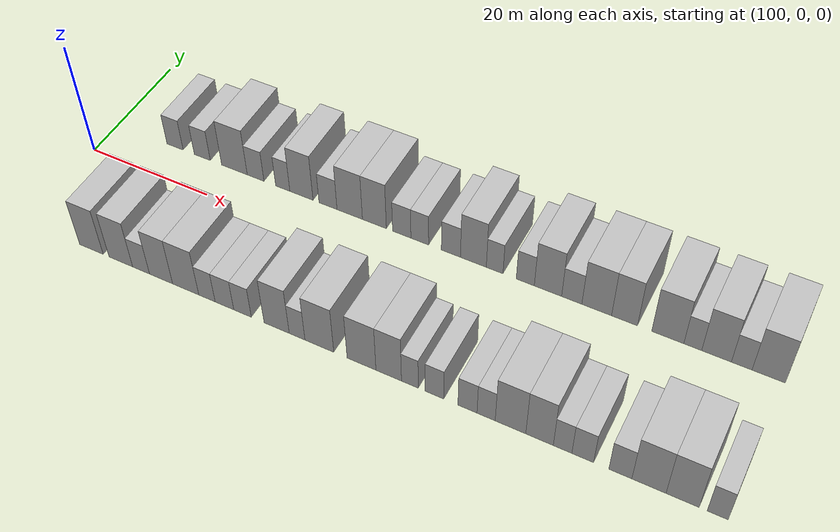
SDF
<sdf version="1.6">
 <world name="default">
  <model name="building_26">
   <static>1</static>
   <pose>110.3970 11.0000 0 0.000000 0.000000 1.570796</pose>
   <link name="link">
    <pose>0 0 3.00 0 0 0</pose>
    <collision name="collision"><geometry><box><size>10.0000 2.8928 6.0000</size></box></geometry></collision>
    <visual name="visual">
     <cast_shadows>0</cast_shadows>
     <geometry><box><size>10.0000 2.8928 6.0000</size></box></geometry>
     <material>
      <script>
       <uri>model://HANNAS_wall/materials/scripts</uri>
       <uri>model://HANNAS_wall/materials/textures</uri>
       <name>vrc/HANNAS_wall</name>
      </script>
     </material>
    </visual>
   </link>
  </model>
  <model name="building_27">
   <static>1</static>
   <pose>115.2579 11.0000 0 0.000000 0.000000 1.570796</pose>
   <link name="link">
    <pose>0 0 3.00 0 0 0</pose>
    <collision name="collision"><geometry><box><size>10.0000 2.8290 6.0000</size></box></geometry></collision>
    <visual name="visual">
     <cast_shadows>0</cast_shadows>
     <geometry><box><size>10.0000 2.8290 6.0000</size></box></geometry>
     <material>
      <script>
       <uri>model://HANNAS_wall/materials/scripts</uri>
       <uri>model://HANNAS_wall/materials/textures</uri>
       <name>vrc/HANNAS_wall</name>
      </script>
     </material>
    </visual>
   </link>
  </model>
  <model name="building_28">
   <static>1</static>
   <pose>120.9026 11.0000 0 0.000000 0.000000 1.570796</pose>
   <link name="link">
    <pose>0 0 4.50 0 0 0</pose>
    <collision name="collision"><geometry><box><size>10.0000 4.4603 9.0000</size></box></geometry></collision>
    <visual name="visual">
     <cast_shadows>0</cast_shadows>
     <geometry><box><size>10.0000 4.4603 9.0000</size></box></geometry>
     <material>
      <script>
       <uri>model://HANNAS_wall/materials/scripts</uri>
       <uri>model://HANNAS_wall/materials/textures</uri>
       <name>vrc/HANNAS_wall</name>
      </script>
     </material>
    </visual>
   </link>
  </model>
  <model name="building_29">
   <static>1</static>
   <pose>124.5694 11.0000 0 0.000000 0.000000 1.570796</pose>
   <link name="link">
    <pose>0 0 3.00 0 0 0</pose>
    <collision name="collision"><geometry><box><size>10.0000 2.8734 6.0000</size></box></geometry></collision>
    <visual name="visual">
     <cast_shadows>0</cast_shadows>
     <geometry><box><size>10.0000 2.8734 6.0000</size></box></geometry>
     <material>
      <script>
       <uri>model://HANNAS_wall/materials/scripts</uri>
       <uri>model://HANNAS_wall/materials/textures</uri>
       <name>vrc/HANNAS_wall</name>
      </script>
     </material>
    </visual>
   </link>
  </model>
  <model name="building_30">
   <static>1</static>
   <pose>129.2118 11.0000 0 0.000000 0.000000 1.570796</pose>
   <link name="link">
    <pose>0 0 3.00 0 0 0</pose>
    <collision name="collision"><geometry><box><size>10.0000 2.4114 6.0000</size></box></geometry></collision>
    <visual name="visual">
     <cast_shadows>0</cast_shadows>
     <geometry><box><size>10.0000 2.4114 6.0000</size></box></geometry>
     <material>
      <script>
       <uri>model://HANNAS_wall/materials/scripts</uri>
       <uri>model://HANNAS_wall/materials/textures</uri>
       <name>vrc/HANNAS_wall</name>
      </script>
     </material>
    </visual>
   </link>
  </model>
  <model name="building_31">
   <static>1</static>
   <pose>132.3618 11.0000 0 0.000000 0.000000 1.570796</pose>
   <link name="link">
    <pose>0 0 4.50 0 0 0</pose>
    <collision name="collision"><geometry><box><size>10.0000 3.8887 9.0000</size></box></geometry></collision>
    <visual name="visual">
     <cast_shadows>0</cast_shadows>
     <geometry><box><size>10.0000 3.8887 9.0000</size></box></geometry>
     <material>
      <script>
       <uri>model://HANNAS_wall/materials/scripts</uri>
       <uri>model://HANNAS_wall/materials/textures</uri>
       <name>vrc/HANNAS_wall</name>
      </script>
     </material>
    </visual>
   </link>
  </model>
  <model name="building_32">
   <static>1</static>
   <pose>136.7934 11.0000 0 0.000000 0.000000 1.570796</pose>
   <link name="link">
    <pose>0 0 3.00 0 0 0</pose>
    <collision name="collision"><geometry><box><size>10.0000 2.9744 6.0000</size></box></geometry></collision>
    <visual name="visual">
     <cast_shadows>0</cast_shadows>
     <geometry><box><size>10.0000 2.9744 6.0000</size></box></geometry>
     <material>
      <script>
       <uri>model://HANNAS_wall/materials/scripts</uri>
       <uri>model://HANNAS_wall/materials/textures</uri>
       <name>vrc/HANNAS_wall</name>
      </script>
     </material>
    </visual>
   </link>
  </model>
  <model name="building_33">
   <static>1</static>
   <pose>140.3611 11.0000 0 0.000000 0.000000 1.570796</pose>
   <link name="link">
    <pose>0 0 4.50 0 0 0</pose>
    <collision name="collision"><geometry><box><size>10.0000 4.1609 9.0000</size></box></geometry></collision>
    <visual name="visual">
     <cast_shadows>0</cast_shadows>
     <geometry><box><size>10.0000 4.1609 9.0000</size></box></geometry>
     <material>
      <script>
       <uri>model://HANNAS_wall/materials/scripts</uri>
       <uri>model://HANNAS_wall/materials/textures</uri>
       <name>vrc/HANNAS_wall</name>
      </script>
     </material>
    </visual>
   </link>
  </model>
  <model name="building_34">
   <static>1</static>
   <pose>144.3769 11.0000 0 0.000000 0.000000 1.570796</pose>
   <link name="link">
    <pose>0 0 4.50 0 0 0</pose>
    <collision name="collision"><geometry><box><size>10.0000 3.8707 9.0000</size></box></geometry></collision>
    <visual name="visual">
     <cast_shadows>0</cast_shadows>
     <geometry><box><size>10.0000 3.8707 9.0000</size></box></geometry>
     <material>
      <script>
       <uri>model://HANNAS_wall/materials/scripts</uri>
       <uri>model://HANNAS_wall/materials/textures</uri>
       <name>vrc/HANNAS_wall</name>
      </script>
     </material>
    </visual>
   </link>
  </model>
  <model name="building_35">
   <static>1</static>
   <pose>148.7696 11.0000 0 0.000000 0.000000 1.570796</pose>
   <link name="link">
    <pose>0 0 3.00 0 0 0</pose>
    <collision name="collision"><geometry><box><size>10.0000 2.9146 6.0000</size></box></geometry></collision>
    <visual name="visual">
     <cast_shadows>0</cast_shadows>
     <geometry><box><size>10.0000 2.9146 6.0000</size></box></geometry>
     <material>
      <script>
       <uri>model://HANNAS_wall/materials/scripts</uri>
       <uri>model://HANNAS_wall/materials/textures</uri>
       <name>vrc/HANNAS_wall</name>
      </script>
     </material>
    </visual>
   </link>
  </model>
  <model name="building_36">
   <static>1</static>
   <pose>151.6270 11.0000 0 0.000000 0.000000 1.570796</pose>
   <link name="link">
    <pose>0 0 3.00 0 0 0</pose>
    <collision name="collision"><geometry><box><size>10.0000 2.8002 6.0000</size></box></geometry></collision>
    <visual name="visual">
     <cast_shadows>0</cast_shadows>
     <geometry><box><size>10.0000 2.8002 6.0000</size></box></geometry>
     <material>
      <script>
       <uri>model://HANNAS_wall/materials/scripts</uri>
       <uri>model://HANNAS_wall/materials/textures</uri>
       <name>vrc/HANNAS_wall</name>
      </script>
     </material>
    </visual>
   </link>
  </model>
  <model name="building_37">
   <static>1</static>
   <pose>156.5075 11.0000 0 0.000000 0.000000 1.570796</pose>
   <link name="link">
    <pose>0 0 3.00 0 0 0</pose>
    <collision name="collision"><geometry><box><size>10.0000 2.9610 6.0000</size></box></geometry></collision>
    <visual name="visual">
     <cast_shadows>0</cast_shadows>
     <geometry><box><size>10.0000 2.9610 6.0000</size></box></geometry>
     <material>
      <script>
       <uri>model://HANNAS_wall/materials/scripts</uri>
       <uri>model://HANNAS_wall/materials/textures</uri>
       <name>vrc/HANNAS_wall</name>
      </script>
     </material>
    </visual>
   </link>
  </model>
  <model name="building_38">
   <static>1</static>
   <pose>159.9757 11.0000 0 0.000000 0.000000 1.570796</pose>
   <link name="link">
    <pose>0 0 4.50 0 0 0</pose>
    <collision name="collision"><geometry><box><size>10.0000 3.9754 9.0000</size></box></geometry></collision>
    <visual name="visual">
     <cast_shadows>0</cast_shadows>
     <geometry><box><size>10.0000 3.9754 9.0000</size></box></geometry>
     <material>
      <script>
       <uri>model://HANNAS_wall/materials/scripts</uri>
       <uri>model://HANNAS_wall/materials/textures</uri>
       <name>vrc/HANNAS_wall</name>
      </script>
     </material>
    </visual>
   </link>
  </model>
  <model name="building_39">
   <static>1</static>
   <pose>163.2324 11.0000 0 0.000000 0.000000 1.570796</pose>
   <link name="link">
    <pose>0 0 3.00 0 0 0</pose>
    <collision name="collision"><geometry><box><size>10.0000 2.5378 6.0000</size></box></geometry></collision>
    <visual name="visual">
     <cast_shadows>0</cast_shadows>
     <geometry><box><size>10.0000 2.5378 6.0000</size></box></geometry>
     <material>
      <script>
       <uri>model://HANNAS_wall/materials/scripts</uri>
       <uri>model://HANNAS_wall/materials/textures</uri>
       <name>vrc/HANNAS_wall</name>
      </script>
     </material>
    </visual>
   </link>
  </model>
  <model name="building_40">
   <static>1</static>
   <pose>167.8504 11.0000 0 0.000000 0.000000 1.570796</pose>
   <link name="link">
    <pose>0 0 3.00 0 0 0</pose>
    <collision name="collision"><geometry><box><size>10.0000 2.6983 6.0000</size></box></geometry></collision>
    <visual name="visual">
     <cast_shadows>0</cast_shadows>
     <geometry><box><size>10.0000 2.6983 6.0000</size></box></geometry>
     <material>
      <script>
       <uri>model://HANNAS_wall/materials/scripts</uri>
       <uri>model://HANNAS_wall/materials/textures</uri>
       <name>vrc/HANNAS_wall</name>
      </script>
     </material>
    </visual>
   </link>
  </model>
  <model name="building_41">
   <static>1</static>
   <pose>171.2241 11.0000 0 0.000000 0.000000 1.570796</pose>
   <link name="link">
    <pose>0 0 4.50 0 0 0</pose>
    <collision name="collision"><geometry><box><size>10.0000 4.0490 9.0000</size></box></geometry></collision>
    <visual name="visual">
     <cast_shadows>0</cast_shadows>
     <geometry><box><size>10.0000 4.0490 9.0000</size></box></geometry>
     <material>
      <script>
       <uri>model://HANNAS_wall/materials/scripts</uri>
       <uri>model://HANNAS_wall/materials/textures</uri>
       <name>vrc/HANNAS_wall</name>
      </script>
     </material>
    </visual>
   </link>
  </model>
  <model name="building_42">
   <static>1</static>
   <pose>174.7261 11.0000 0 0.000000 0.000000 1.570796</pose>
   <link name="link">
    <pose>0 0 3.00 0 0 0</pose>
    <collision name="collision"><geometry><box><size>10.0000 2.9550 6.0000</size></box></geometry></collision>
    <visual name="visual">
     <cast_shadows>0</cast_shadows>
     <geometry><box><size>10.0000 2.9550 6.0000</size></box></geometry>
     <material>
      <script>
       <uri>model://HANNAS_wall/materials/scripts</uri>
       <uri>model://HANNAS_wall/materials/textures</uri>
       <name>vrc/HANNAS_wall</name>
      </script>
     </material>
    </visual>
   </link>
  </model>
  <model name="building_43">
   <static>1</static>
   <pose>178.3514 11.0000 0 0.000000 0.000000 1.570796</pose>
   <link name="link">
    <pose>0 0 4.50 0 0 0</pose>
    <collision name="collision"><geometry><box><size>10.0000 4.2957 9.0000</size></box></geometry></collision>
    <visual name="visual">
     <cast_shadows>0</cast_shadows>
     <geometry><box><size>10.0000 4.2957 9.0000</size></box></geometry>
     <material>
      <script>
       <uri>model://HANNAS_wall/materials/scripts</uri>
       <uri>model://HANNAS_wall/materials/textures</uri>
       <name>vrc/HANNAS_wall</name>
      </script>
     </material>
    </visual>
   </link>
  </model>
  <model name="building_44">
   <static>1</static>
   <pose>182.3500 11.0000 0 0.000000 0.000000 1.570796</pose>
   <link name="link">
    <pose>0 0 4.50 0 0 0</pose>
    <collision name="collision"><geometry><box><size>10.0000 3.7013 9.0000</size></box></geometry></collision>
    <visual name="visual">
     <cast_shadows>0</cast_shadows>
     <geometry><box><size>10.0000 3.7013 9.0000</size></box></geometry>
     <material>
      <script>
       <uri>model://HANNAS_wall/materials/scripts</uri>
       <uri>model://HANNAS_wall/materials/textures</uri>
       <name>vrc/HANNAS_wall</name>
      </script>
     </material>
    </visual>
   </link>
  </model>
  <model name="building_45">
   <static>1</static>
   <pose>188.4434 11.0000 0 0.000000 0.000000 1.570796</pose>
   <link name="link">
    <pose>0 0 4.50 0 0 0</pose>
    <collision name="collision"><geometry><box><size>10.0000 4.4856 9.0000</size></box></geometry></collision>
    <visual name="visual">
     <cast_shadows>0</cast_shadows>
     <geometry><box><size>10.0000 4.4856 9.0000</size></box></geometry>
     <material>
      <script>
       <uri>model://HANNAS_wall/materials/scripts</uri>
       <uri>model://HANNAS_wall/materials/textures</uri>
       <name>vrc/HANNAS_wall</name>
      </script>
     </material>
    </visual>
   </link>
  </model>
  <model name="building_46">
   <static>1</static>
   <pose>191.9184 11.0000 0 0.000000 0.000000 1.570796</pose>
   <link name="link">
    <pose>0 0 3.00 0 0 0</pose>
    <collision name="collision"><geometry><box><size>10.0000 2.4643 6.0000</size></box></geometry></collision>
    <visual name="visual">
     <cast_shadows>0</cast_shadows>
     <geometry><box><size>10.0000 2.4643 6.0000</size></box></geometry>
     <material>
      <script>
       <uri>model://HANNAS_wall/materials/scripts</uri>
       <uri>model://HANNAS_wall/materials/textures</uri>
       <name>vrc/HANNAS_wall</name>
      </script>
     </material>
    </visual>
   </link>
  </model>
  <model name="building_47">
   <static>1</static>
   <pose>195.1739 11.0000 0 0.000000 0.000000 1.570796</pose>
   <link name="link">
    <pose>0 0 4.50 0 0 0</pose>
    <collision name="collision"><geometry><box><size>10.0000 4.0467 9.0000</size></box></geometry></collision>
    <visual name="visual">
     <cast_shadows>0</cast_shadows>
     <geometry><box><size>10.0000 4.0467 9.0000</size></box></geometry>
     <material>
      <script>
       <uri>model://HANNAS_wall/materials/scripts</uri>
       <uri>model://HANNAS_wall/materials/textures</uri>
       <name>vrc/HANNAS_wall</name>
      </script>
     </material>
    </visual>
   </link>
  </model>
  <model name="building_48">
   <static>1</static>
   <pose>198.5893 11.0000 0 0.000000 0.000000 1.570796</pose>
   <link name="link">
    <pose>0 0 3.00 0 0 0</pose>
    <collision name="collision"><geometry><box><size>10.0000 2.7841 6.0000</size></box></geometry></collision>
    <visual name="visual">
     <cast_shadows>0</cast_shadows>
     <geometry><box><size>10.0000 2.7841 6.0000</size></box></geometry>
     <material>
      <script>
       <uri>model://HANNAS_wall/materials/scripts</uri>
       <uri>model://HANNAS_wall/materials/textures</uri>
       <name>vrc/HANNAS_wall</name>
      </script>
     </material>
    </visual>
   </link>
  </model>
  <model name="building_49">
   <static>1</static>
   <pose>202.2018 11.0000 0 0.000000 0.000000 1.570796</pose>
   <link name="link">
    <pose>0 0 4.50 0 0 0</pose>
    <collision name="collision"><geometry><box><size>10.0000 4.4410 9.0000</size></box></geometry></collision>
    <visual name="visual">
     <cast_shadows>0</cast_shadows>
     <geometry><box><size>10.0000 4.4410 9.0000</size></box></geometry>
     <material>
      <script>
       <uri>model://HANNAS_wall/materials/scripts</uri>
       <uri>model://HANNAS_wall/materials/textures</uri>
       <name>vrc/HANNAS_wall</name>
      </script>
     </material>
    </visual>
   </link>
  </model>
  <model name="building_74">
   <static>1</static>
   <pose>111.3122 -11.0000 0 0.000000 0.000000 1.570796</pose>
   <link name="link">
    <pose>0 0 4.50 0 0 0</pose>
    <collision name="collision"><geometry><box><size>10.0000 4.0445 9.0000</size></box></geometry></collision>
    <visual name="visual">
     <cast_shadows>0</cast_shadows>
     <geometry><box><size>10.0000 4.0445 9.0000</size></box></geometry>
     <material>
      <script>
       <uri>model://HANNAS_wall/materials/scripts</uri>
       <uri>model://HANNAS_wall/materials/textures</uri>
       <name>vrc/HANNAS_wall</name>
      </script>
     </material>
    </visual>
   </link>
  </model>
  <model name="building_75">
   <static>1</static>
   <pose>116.3274 -11.0000 0 0.000000 0.000000 1.570796</pose>
   <link name="link">
    <pose>0 0 4.50 0 0 0</pose>
    <collision name="collision"><geometry><box><size>10.0000 3.9859 9.0000</size></box></geometry></collision>
    <visual name="visual">
     <cast_shadows>0</cast_shadows>
     <geometry><box><size>10.0000 3.9859 9.0000</size></box></geometry>
     <material>
      <script>
       <uri>model://HANNAS_wall/materials/scripts</uri>
       <uri>model://HANNAS_wall/materials/textures</uri>
       <name>vrc/HANNAS_wall</name>
      </script>
     </material>
    </visual>
   </link>
  </model>
  <model name="building_76">
   <static>1</static>
   <pose>119.7270 -11.0000 0 0.000000 0.000000 1.570796</pose>
   <link name="link">
    <pose>0 0 3.00 0 0 0</pose>
    <collision name="collision"><geometry><box><size>10.0000 2.8134 6.0000</size></box></geometry></collision>
    <visual name="visual">
     <cast_shadows>0</cast_shadows>
     <geometry><box><size>10.0000 2.8134 6.0000</size></box></geometry>
     <material>
      <script>
       <uri>model://HANNAS_wall/materials/scripts</uri>
       <uri>model://HANNAS_wall/materials/textures</uri>
       <name>vrc/HANNAS_wall</name>
      </script>
     </material>
    </visual>
   </link>
  </model>
  <model name="building_77">
   <static>1</static>
   <pose>123.0433 -11.0000 0 0.000000 0.000000 1.570796</pose>
   <link name="link">
    <pose>0 0 4.50 0 0 0</pose>
    <collision name="collision"><geometry><box><size>10.0000 3.8192 9.0000</size></box></geometry></collision>
    <visual name="visual">
     <cast_shadows>0</cast_shadows>
     <geometry><box><size>10.0000 3.8192 9.0000</size></box></geometry>
     <material>
      <script>
       <uri>model://HANNAS_wall/materials/scripts</uri>
       <uri>model://HANNAS_wall/materials/textures</uri>
       <name>vrc/HANNAS_wall</name>
      </script>
     </material>
    </visual>
   </link>
  </model>
  <model name="building_78">
   <static>1</static>
   <pose>127.0826 -11.0000 0 0.000000 0.000000 1.570796</pose>
   <link name="link">
    <pose>0 0 4.50 0 0 0</pose>
    <collision name="collision"><geometry><box><size>10.0000 4.2594 9.0000</size></box></geometry></collision>
    <visual name="visual">
     <cast_shadows>0</cast_shadows>
     <geometry><box><size>10.0000 4.2594 9.0000</size></box></geometry>
     <material>
      <script>
       <uri>model://HANNAS_wall/materials/scripts</uri>
       <uri>model://HANNAS_wall/materials/textures</uri>
       <name>vrc/HANNAS_wall</name>
      </script>
     </material>
    </visual>
   </link>
  </model>
  <model name="building_79">
   <static>1</static>
   <pose>130.5318 -11.0000 0 0.000000 0.000000 1.570796</pose>
   <link name="link">
    <pose>0 0 3.00 0 0 0</pose>
    <collision name="collision"><geometry><box><size>10.0000 2.6389 6.0000</size></box></geometry></collision>
    <visual name="visual">
     <cast_shadows>0</cast_shadows>
     <geometry><box><size>10.0000 2.6389 6.0000</size></box></geometry>
     <material>
      <script>
       <uri>model://HANNAS_wall/materials/scripts</uri>
       <uri>model://HANNAS_wall/materials/textures</uri>
       <name>vrc/HANNAS_wall</name>
      </script>
     </material>
    </visual>
   </link>
  </model>
  <model name="building_80">
   <static>1</static>
   <pose>133.3318 -11.0000 0 0.000000 0.000000 1.570796</pose>
   <link name="link">
    <pose>0 0 3.00 0 0 0</pose>
    <collision name="collision"><geometry><box><size>10.0000 2.9610 6.0000</size></box></geometry></collision>
    <visual name="visual">
     <cast_shadows>0</cast_shadows>
     <geometry><box><size>10.0000 2.9610 6.0000</size></box></geometry>
     <material>
      <script>
       <uri>model://HANNAS_wall/materials/scripts</uri>
       <uri>model://HANNAS_wall/materials/textures</uri>
       <name>vrc/HANNAS_wall</name>
      </script>
     </material>
    </visual>
   </link>
  </model>
  <model name="building_81">
   <static>1</static>
   <pose>136.1975 -11.0000 0 0.000000 0.000000 1.570796</pose>
   <link name="link">
    <pose>0 0 3.00 0 0 0</pose>
    <collision name="collision"><geometry><box><size>10.0000 2.7705 6.0000</size></box></geometry></collision>
    <visual name="visual">
     <cast_shadows>0</cast_shadows>
     <geometry><box><size>10.0000 2.7705 6.0000</size></box></geometry>
     <material>
      <script>
       <uri>model://HANNAS_wall/materials/scripts</uri>
       <uri>model://HANNAS_wall/materials/textures</uri>
       <name>vrc/HANNAS_wall</name>
      </script>
     </material>
    </visual>
   </link>
  </model>
  <model name="building_82">
   <static>1</static>
   <pose>141.5316 -11.0000 0 0.000000 0.000000 1.570796</pose>
   <link name="link">
    <pose>0 0 4.50 0 0 0</pose>
    <collision name="collision"><geometry><box><size>10.0000 3.8975 9.0000</size></box></geometry></collision>
    <visual name="visual">
     <cast_shadows>0</cast_shadows>
     <geometry><box><size>10.0000 3.8975 9.0000</size></box></geometry>
     <material>
      <script>
       <uri>model://HANNAS_wall/materials/scripts</uri>
       <uri>model://HANNAS_wall/materials/textures</uri>
       <name>vrc/HANNAS_wall</name>
      </script>
     </material>
    </visual>
   </link>
  </model>
  <model name="building_83">
   <static>1</static>
   <pose>144.6869 -11.0000 0 0.000000 0.000000 1.570796</pose>
   <link name="link">
    <pose>0 0 3.00 0 0 0</pose>
    <collision name="collision"><geometry><box><size>10.0000 2.4132 6.0000</size></box></geometry></collision>
    <visual name="visual">
     <cast_shadows>0</cast_shadows>
     <geometry><box><size>10.0000 2.4132 6.0000</size></box></geometry>
     <material>
      <script>
       <uri>model://HANNAS_wall/materials/scripts</uri>
       <uri>model://HANNAS_wall/materials/textures</uri>
       <name>vrc/HANNAS_wall</name>
      </script>
     </material>
    </visual>
   </link>
  </model>
  <model name="building_84">
   <static>1</static>
   <pose>148.0735 -11.0000 0 0.000000 0.000000 1.570796</pose>
   <link name="link">
    <pose>0 0 4.50 0 0 0</pose>
    <collision name="collision"><geometry><box><size>10.0000 4.3600 9.0000</size></box></geometry></collision>
    <visual name="visual">
     <cast_shadows>0</cast_shadows>
     <geometry><box><size>10.0000 4.3600 9.0000</size></box></geometry>
     <material>
      <script>
       <uri>model://HANNAS_wall/materials/scripts</uri>
       <uri>model://HANNAS_wall/materials/textures</uri>
       <name>vrc/HANNAS_wall</name>
      </script>
     </material>
    </visual>
   </link>
  </model>
  <model name="building_85">
   <static>1</static>
   <pose>154.3914 -11.0000 0 0.000000 0.000000 1.570796</pose>
   <link name="link">
    <pose>0 0 4.50 0 0 0</pose>
    <collision name="collision"><geometry><box><size>10.0000 4.2757 9.0000</size></box></geometry></collision>
    <visual name="visual">
     <cast_shadows>0</cast_shadows>
     <geometry><box><size>10.0000 4.2757 9.0000</size></box></geometry>
     <material>
      <script>
       <uri>model://HANNAS_wall/materials/scripts</uri>
       <uri>model://HANNAS_wall/materials/textures</uri>
       <name>vrc/HANNAS_wall</name>
      </script>
     </material>
    </visual>
   </link>
  </model>
  <model name="building_86">
   <static>1</static>
   <pose>158.3943 -11.0000 0 0.000000 0.000000 1.570796</pose>
   <link name="link">
    <pose>0 0 4.50 0 0 0</pose>
    <collision name="collision"><geometry><box><size>10.0000 3.7302 9.0000</size></box></geometry></collision>
    <visual name="visual">
     <cast_shadows>0</cast_shadows>
     <geometry><box><size>10.0000 3.7302 9.0000</size></box></geometry>
     <material>
      <script>
       <uri>model://HANNAS_wall/materials/scripts</uri>
       <uri>model://HANNAS_wall/materials/textures</uri>
       <name>vrc/HANNAS_wall</name>
      </script>
     </material>
    </visual>
   </link>
  </model>
  <model name="building_87">
   <static>1</static>
   <pose>161.4746 -11.0000 0 0.000000 0.000000 1.570796</pose>
   <link name="link">
    <pose>0 0 3.00 0 0 0</pose>
    <collision name="collision"><geometry><box><size>10.0000 2.4304 6.0000</size></box></geometry></collision>
    <visual name="visual">
     <cast_shadows>0</cast_shadows>
     <geometry><box><size>10.0000 2.4304 6.0000</size></box></geometry>
     <material>
      <script>
       <uri>model://HANNAS_wall/materials/scripts</uri>
       <uri>model://HANNAS_wall/materials/textures</uri>
       <name>vrc/HANNAS_wall</name>
      </script>
     </material>
    </visual>
   </link>
  </model>
  <model name="building_88">
   <static>1</static>
   <pose>165.0149 -11.0000 0 0.000000 0.000000 1.570796</pose>
   <link name="link">
    <pose>0 0 3.00 0 0 0</pose>
    <collision name="collision"><geometry><box><size>10.0000 2.6503 6.0000</size></box></geometry></collision>
    <visual name="visual">
     <cast_shadows>0</cast_shadows>
     <geometry><box><size>10.0000 2.6503 6.0000</size></box></geometry>
     <material>
      <script>
       <uri>model://HANNAS_wall/materials/scripts</uri>
       <uri>model://HANNAS_wall/materials/textures</uri>
       <name>vrc/HANNAS_wall</name>
      </script>
     </material>
    </visual>
   </link>
  </model>
  <model name="building_89">
   <static>1</static>
   <pose>169.6789 -11.0000 0 0.000000 0.000000 1.570796</pose>
   <link name="link">
    <pose>0 0 3.00 0 0 0</pose>
    <collision name="collision"><geometry><box><size>10.0000 2.6776 6.0000</size></box></geometry></collision>
    <visual name="visual">
     <cast_shadows>0</cast_shadows>
     <geometry><box><size>10.0000 2.6776 6.0000</size></box></geometry>
     <material>
      <script>
       <uri>model://HANNAS_wall/materials/scripts</uri>
       <uri>model://HANNAS_wall/materials/textures</uri>
       <name>vrc/HANNAS_wall</name>
      </script>
     </material>
    </visual>
   </link>
  </model>
  <model name="building_90">
   <static>1</static>
   <pose>172.2812 -11.0000 0 0.000000 0.000000 1.570796</pose>
   <link name="link">
    <pose>0 0 3.00 0 0 0</pose>
    <collision name="collision"><geometry><box><size>10.0000 2.5270 6.0000</size></box></geometry></collision>
    <visual name="visual">
     <cast_shadows>0</cast_shadows>
     <geometry><box><size>10.0000 2.5270 6.0000</size></box></geometry>
     <material>
      <script>
       <uri>model://HANNAS_wall/materials/scripts</uri>
       <uri>model://HANNAS_wall/materials/textures</uri>
       <name>vrc/HANNAS_wall</name>
      </script>
     </material>
    </visual>
   </link>
  </model>
  <model name="building_91">
   <static>1</static>
   <pose>175.6465 -11.0000 0 0.000000 0.000000 1.570796</pose>
   <link name="link">
    <pose>0 0 4.50 0 0 0</pose>
    <collision name="collision"><geometry><box><size>10.0000 4.2036 9.0000</size></box></geometry></collision>
    <visual name="visual">
     <cast_shadows>0</cast_shadows>
     <geometry><box><size>10.0000 4.2036 9.0000</size></box></geometry>
     <material>
      <script>
       <uri>model://HANNAS_wall/materials/scripts</uri>
       <uri>model://HANNAS_wall/materials/textures</uri>
       <name>vrc/HANNAS_wall</name>
      </script>
     </material>
    </visual>
   </link>
  </model>
  <model name="building_92">
   <static>1</static>
   <pose>179.6084 -11.0000 0 0.000000 0.000000 1.570796</pose>
   <link name="link">
    <pose>0 0 4.50 0 0 0</pose>
    <collision name="collision"><geometry><box><size>10.0000 3.7202 9.0000</size></box></geometry></collision>
    <visual name="visual">
     <cast_shadows>0</cast_shadows>
     <geometry><box><size>10.0000 3.7202 9.0000</size></box></geometry>
     <material>
      <script>
       <uri>model://HANNAS_wall/materials/scripts</uri>
       <uri>model://HANNAS_wall/materials/textures</uri>
       <name>vrc/HANNAS_wall</name>
      </script>
     </material>
    </visual>
   </link>
  </model>
  <model name="building_93">
   <static>1</static>
   <pose>182.7102 -11.0000 0 0.000000 0.000000 1.570796</pose>
   <link name="link">
    <pose>0 0 3.00 0 0 0</pose>
    <collision name="collision"><geometry><box><size>10.0000 2.4833 6.0000</size></box></geometry></collision>
    <visual name="visual">
     <cast_shadows>0</cast_shadows>
     <geometry><box><size>10.0000 2.4833 6.0000</size></box></geometry>
     <material>
      <script>
       <uri>model://HANNAS_wall/materials/scripts</uri>
       <uri>model://HANNAS_wall/materials/textures</uri>
       <name>vrc/HANNAS_wall</name>
      </script>
     </material>
    </visual>
   </link>
  </model>
  <model name="building_94">
   <static>1</static>
   <pose>185.3940 -11.0000 0 0.000000 0.000000 1.570796</pose>
   <link name="link">
    <pose>0 0 3.00 0 0 0</pose>
    <collision name="collision"><geometry><box><size>10.0000 2.8844 6.0000</size></box></geometry></collision>
    <visual name="visual">
     <cast_shadows>0</cast_shadows>
     <geometry><box><size>10.0000 2.8844 6.0000</size></box></geometry>
     <material>
      <script>
       <uri>model://HANNAS_wall/materials/scripts</uri>
       <uri>model://HANNAS_wall/materials/textures</uri>
       <name>vrc/HANNAS_wall</name>
      </script>
     </material>
    </visual>
   </link>
  </model>
  <model name="building_95">
   <static>1</static>
   <pose>190.3311 -11.0000 0 0.000000 0.000000 1.570796</pose>
   <link name="link">
    <pose>0 0 3.00 0 0 0</pose>
    <collision name="collision"><geometry><box><size>10.0000 2.9898 6.0000</size></box></geometry></collision>
    <visual name="visual">
     <cast_shadows>0</cast_shadows>
     <geometry><box><size>10.0000 2.9898 6.0000</size></box></geometry>
     <material>
      <script>
       <uri>model://HANNAS_wall/materials/scripts</uri>
       <uri>model://HANNAS_wall/materials/textures</uri>
       <name>vrc/HANNAS_wall</name>
      </script>
     </material>
    </visual>
   </link>
  </model>
  <model name="building_96">
   <static>1</static>
   <pose>194.0226 -11.0000 0 0.000000 0.000000 1.570796</pose>
   <link name="link">
    <pose>0 0 4.50 0 0 0</pose>
    <collision name="collision"><geometry><box><size>10.0000 4.3932 9.0000</size></box></geometry></collision>
    <visual name="visual">
     <cast_shadows>0</cast_shadows>
     <geometry><box><size>10.0000 4.3932 9.0000</size></box></geometry>
     <material>
      <script>
       <uri>model://HANNAS_wall/materials/scripts</uri>
       <uri>model://HANNAS_wall/materials/textures</uri>
       <name>vrc/HANNAS_wall</name>
      </script>
     </material>
    </visual>
   </link>
  </model>
  <model name="building_97">
   <static>1</static>
   <pose>198.3133 -11.0000 0 0.000000 0.000000 1.570796</pose>
   <link name="link">
    <pose>0 0 4.50 0 0 0</pose>
    <collision name="collision"><geometry><box><size>10.0000 4.1882 9.0000</size></box></geometry></collision>
    <visual name="visual">
     <cast_shadows>0</cast_shadows>
     <geometry><box><size>10.0000 4.1882 9.0000</size></box></geometry>
     <material>
      <script>
       <uri>model://HANNAS_wall/materials/scripts</uri>
       <uri>model://HANNAS_wall/materials/textures</uri>
       <name>vrc/HANNAS_wall</name>
      </script>
     </material>
    </visual>
   </link>
  </model>
  <model name="building_98">
   <static>1</static>
   <pose>202.7135 -11.0000 0 0.000000 0.000000 1.570796</pose>
   <link name="link">
    <pose>0 0 3.00 0 0 0</pose>
    <collision name="collision"><geometry><box><size>10.0000 2.6123 6.0000</size></box></geometry></collision>
    <visual name="visual">
     <cast_shadows>0</cast_shadows>
     <geometry><box><size>10.0000 2.6123 6.0000</size></box></geometry>
     <material>
      <script>
       <uri>model://HANNAS_wall/materials/scripts</uri>
       <uri>model://HANNAS_wall/materials/textures</uri>
       <name>vrc/HANNAS_wall</name>
      </script>
     </material>
    </visual>
   </link>
  </model>
 </world>
</sdf>
